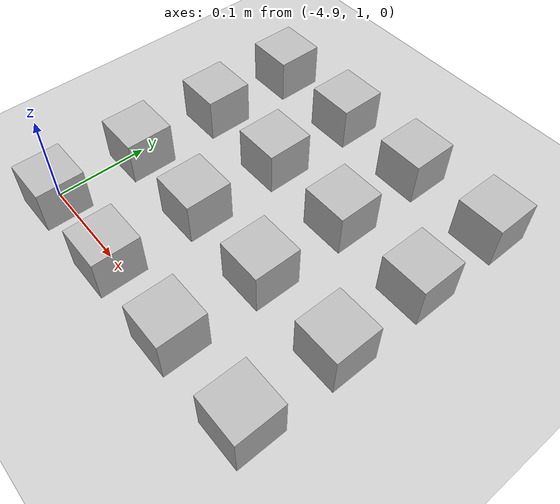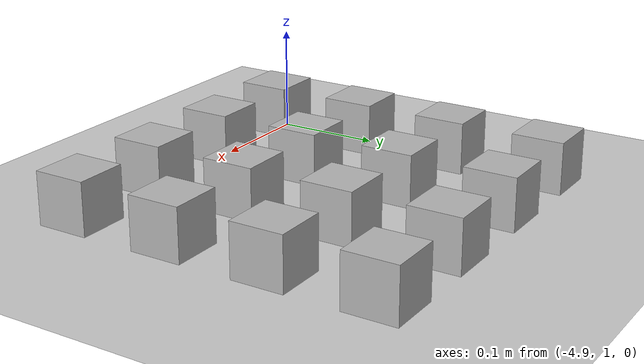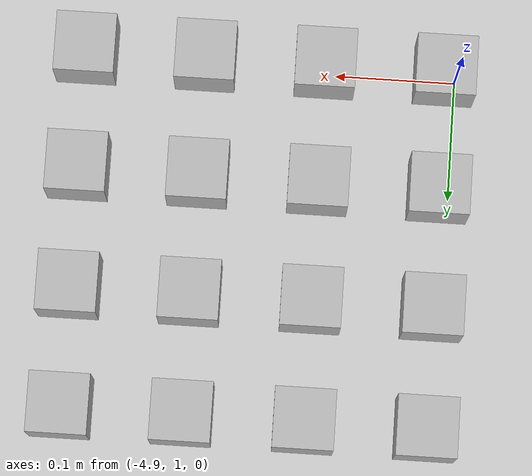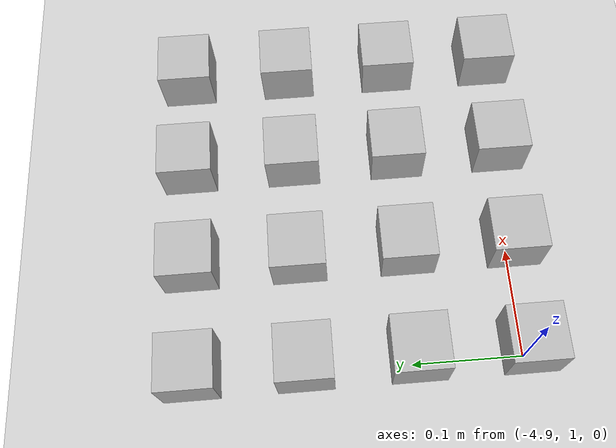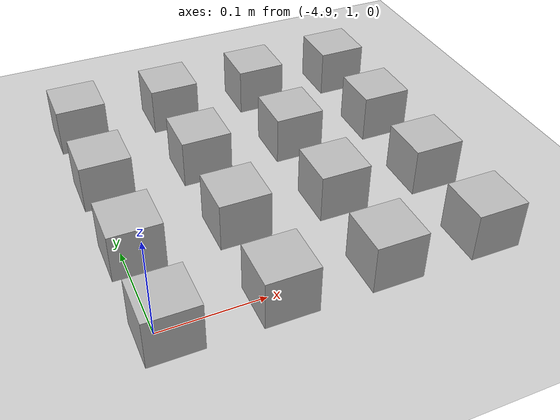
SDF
<sdf version="1.6">
 <world name="default">
  <model name="ground_plane">
   <static>1</static>
   <link name="link">
    <collision name="collision">
     <geometry><plane><normal>0 0 1</normal><size>100 100</size></plane></geometry>
     <surface><friction><ode><mu>100</mu><mu2>50</mu2></ode></friction></surface>
    </collision>
    <visual name="visual">
     <cast_shadows>0</cast_shadows>
     <geometry><plane><normal>0 0 1</normal><size>100 100</size></plane></geometry>
     <material>
      <script><uri>file://media/materials/scripts/gazebo.material</uri><name>Gazebo/Grey</name></script>
     </material>
    </visual>
   </link>
  </model>
  <model name="at0">
   <static>0</static>
   <link name="link">
    <inertial>
     <mass>0.01</mass>
     <inertia><ixx>4e-05</ixx><ixy>0</ixy><ixz>0</ixz><iyy>4e-05</iyy><iyz>0</iyz><izz>4e-05</izz></inertia>
    </inertial>
    <visual name="visual">
     <geometry><box><size>0.05 0.05 0.05</size></box></geometry>
     <material>
      <script>
       <uri>model://at0/materials/scripts</uri>
       <uri>model://at0/materials/textures</uri>
       <name>at0/Diffuse</name>
      </script>
     </material>
    </visual>
    <collision name="collision">
     <geometry><box><size>0.05 0.05 0.05</size></box></geometry>
     <surface><friction><ode><mu>0.8</mu><mu2>0.7</mu2></ode></friction></surface>
    </collision>
   </link>
   <pose>-4.89048 0.994146 0.025 0 -0 0</pose>
  </model>
  <model name="at1">
   <static>0</static>
   <link name="link">
    <inertial>
     <mass>0.01</mass>
     <inertia><ixx>4e-05</ixx><ixy>0</ixy><ixz>0</ixz><iyy>4e-05</iyy><iyz>0</iyz><izz>4e-05</izz></inertia>
    </inertial>
    <visual name="visual">
     <geometry><box><size>0.05 0.05 0.05</size></box></geometry>
     <material>
      <script>
       <uri>model://at0/materials/scripts</uri>
       <uri>model://at0/materials/textures</uri>
       <name>at0/Diffuse</name>
      </script>
     </material>
    </visual>
    <collision name="collision">
     <geometry><box><size>0.05 0.05 0.05</size></box></geometry>
     <surface><friction><ode><mu>0.8</mu><mu2>0.7</mu2></ode></friction></surface>
    </collision>
   </link>
   <pose>-4.79048 0.994146 0.025 0 -0 0</pose>
  </model>
  <model name="at2">
   <static>0</static>
   <link name="link">
    <inertial>
     <mass>0.01</mass>
     <inertia><ixx>4e-05</ixx><ixy>0</ixy><ixz>0</ixz><iyy>4e-05</iyy><iyz>0</iyz><izz>4e-05</izz></inertia>
    </inertial>
    <visual name="visual">
     <geometry><box><size>0.05 0.05 0.05</size></box></geometry>
     <material>
      <script>
       <uri>model://at0/materials/scripts</uri>
       <uri>model://at0/materials/textures</uri>
       <name>at0/Diffuse</name>
      </script>
     </material>
    </visual>
    <collision name="collision">
     <geometry><box><size>0.05 0.05 0.05</size></box></geometry>
     <surface><friction><ode><mu>0.8</mu><mu2>0.7</mu2></ode></friction></surface>
    </collision>
   </link>
   <pose>-4.69048 0.994146 0.025 0 -0 0</pose>
  </model>
  <model name="at3">
   <static>0</static>
   <link name="link">
    <inertial>
     <mass>0.01</mass>
     <inertia><ixx>4e-05</ixx><ixy>0</ixy><ixz>0</ixz><iyy>4e-05</iyy><iyz>0</iyz><izz>4e-05</izz></inertia>
    </inertial>
    <visual name="visual">
     <geometry><box><size>0.05 0.05 0.05</size></box></geometry>
     <material>
      <script>
       <uri>model://at0/materials/scripts</uri>
       <uri>model://at0/materials/textures</uri>
       <name>at0/Diffuse</name>
      </script>
     </material>
    </visual>
    <collision name="collision">
     <geometry><box><size>0.05 0.05 0.05</size></box></geometry>
     <surface><friction><ode><mu>0.8</mu><mu2>0.7</mu2></ode></friction></surface>
    </collision>
   </link>
   <pose>-4.59048 0.994146 0.025 0 -0 0</pose>
  </model>
  <model name="at4">
   <static>0</static>
   <link name="link">
    <inertial>
     <mass>0.01</mass>
     <inertia><ixx>4e-05</ixx><ixy>0</ixy><ixz>0</ixz><iyy>4e-05</iyy><iyz>0</iyz><izz>4e-05</izz></inertia>
    </inertial>
    <visual name="visual">
     <geometry><box><size>0.05 0.05 0.05</size></box></geometry>
     <material>
      <script>
       <uri>model://at0/materials/scripts</uri>
       <uri>model://at0/materials/textures</uri>
       <name>at0/Diffuse</name>
      </script>
     </material>
    </visual>
    <collision name="collision">
     <geometry><box><size>0.05 0.05 0.05</size></box></geometry>
     <surface><friction><ode><mu>0.8</mu><mu2>0.7</mu2></ode></friction></surface>
    </collision>
   </link>
   <pose>-4.89048 1.09415 0.025 0 -0 0</pose>
  </model>
  <model name="at5">
   <static>0</static>
   <link name="link">
    <inertial>
     <mass>0.01</mass>
     <inertia><ixx>4e-05</ixx><ixy>0</ixy><ixz>0</ixz><iyy>4e-05</iyy><iyz>0</iyz><izz>4e-05</izz></inertia>
    </inertial>
    <visual name="visual">
     <geometry><box><size>0.05 0.05 0.05</size></box></geometry>
     <material>
      <script>
       <uri>model://at0/materials/scripts</uri>
       <uri>model://at0/materials/textures</uri>
       <name>at0/Diffuse</name>
      </script>
     </material>
    </visual>
    <collision name="collision">
     <geometry><box><size>0.05 0.05 0.05</size></box></geometry>
     <surface><friction><ode><mu>0.8</mu><mu2>0.7</mu2></ode></friction></surface>
    </collision>
   </link>
   <pose>-4.79048 1.09415 0.025 0 -0 0</pose>
  </model>
  <model name="at6">
   <static>0</static>
   <link name="link">
    <inertial>
     <mass>0.01</mass>
     <inertia><ixx>4e-05</ixx><ixy>0</ixy><ixz>0</ixz><iyy>4e-05</iyy><iyz>0</iyz><izz>4e-05</izz></inertia>
    </inertial>
    <visual name="visual">
     <geometry><box><size>0.05 0.05 0.05</size></box></geometry>
     <material>
      <script>
       <uri>model://at0/materials/scripts</uri>
       <uri>model://at0/materials/textures</uri>
       <name>at0/Diffuse</name>
      </script>
     </material>
    </visual>
    <collision name="collision">
     <geometry><box><size>0.05 0.05 0.05</size></box></geometry>
     <surface><friction><ode><mu>0.8</mu><mu2>0.7</mu2></ode></friction></surface>
    </collision>
   </link>
   <pose>-4.69048 1.09415 0.025 0 -0 0</pose>
  </model>
  <model name="at7">
   <static>0</static>
   <link name="link">
    <inertial>
     <mass>0.01</mass>
     <inertia><ixx>4e-05</ixx><ixy>0</ixy><ixz>0</ixz><iyy>4e-05</iyy><iyz>0</iyz><izz>4e-05</izz></inertia>
    </inertial>
    <visual name="visual">
     <geometry><box><size>0.05 0.05 0.05</size></box></geometry>
     <material>
      <script>
       <uri>model://at0/materials/scripts</uri>
       <uri>model://at0/materials/textures</uri>
       <name>at0/Diffuse</name>
      </script>
     </material>
    </visual>
    <collision name="collision">
     <geometry><box><size>0.05 0.05 0.05</size></box></geometry>
     <surface><friction><ode><mu>0.8</mu><mu2>0.7</mu2></ode></friction></surface>
    </collision>
   </link>
   <pose>-4.59048 1.09415 0.025 0 -0 0</pose>
  </model>
  <model name="at8">
   <static>0</static>
   <link name="link">
    <inertial>
     <mass>0.01</mass>
     <inertia><ixx>4e-05</ixx><ixy>0</ixy><ixz>0</ixz><iyy>4e-05</iyy><iyz>0</iyz><izz>4e-05</izz></inertia>
    </inertial>
    <visual name="visual">
     <geometry><box><size>0.05 0.05 0.05</size></box></geometry>
     <material>
      <script>
       <uri>model://at0/materials/scripts</uri>
       <uri>model://at0/materials/textures</uri>
       <name>at0/Diffuse</name>
      </script>
     </material>
    </visual>
    <collision name="collision">
     <geometry><box><size>0.05 0.05 0.05</size></box></geometry>
     <surface><friction><ode><mu>0.8</mu><mu2>0.7</mu2></ode></friction></surface>
    </collision>
   </link>
   <pose>-4.89048 1.19415 0.025 0 -0 0</pose>
  </model>
  <model name="at9">
   <static>0</static>
   <link name="link">
    <inertial>
     <mass>0.01</mass>
     <inertia><ixx>4e-05</ixx><ixy>0</ixy><ixz>0</ixz><iyy>4e-05</iyy><iyz>0</iyz><izz>4e-05</izz></inertia>
    </inertial>
    <visual name="visual">
     <geometry><box><size>0.05 0.05 0.05</size></box></geometry>
     <material>
      <script>
       <uri>model://at0/materials/scripts</uri>
       <uri>model://at0/materials/textures</uri>
       <name>at0/Diffuse</name>
      </script>
     </material>
    </visual>
    <collision name="collision">
     <geometry><box><size>0.05 0.05 0.05</size></box></geometry>
     <surface><friction><ode><mu>0.8</mu><mu2>0.7</mu2></ode></friction></surface>
    </collision>
   </link>
   <pose>-4.79048 1.19415 0.025 0 -0 0</pose>
  </model>
  <model name="at10">
   <static>0</static>
   <link name="link">
    <inertial>
     <mass>0.01</mass>
     <inertia><ixx>4e-05</ixx><ixy>0</ixy><ixz>0</ixz><iyy>4e-05</iyy><iyz>0</iyz><izz>4e-05</izz></inertia>
    </inertial>
    <visual name="visual">
     <geometry><box><size>0.05 0.05 0.05</size></box></geometry>
     <material>
      <script>
       <uri>model://at0/materials/scripts</uri>
       <uri>model://at0/materials/textures</uri>
       <name>at0/Diffuse</name>
      </script>
     </material>
    </visual>
    <collision name="collision">
     <geometry><box><size>0.05 0.05 0.05</size></box></geometry>
     <surface><friction><ode><mu>0.8</mu><mu2>0.7</mu2></ode></friction></surface>
    </collision>
   </link>
   <pose>-4.69048 1.19415 0.025 0 -0 0</pose>
  </model>
  <model name="at11">
   <static>0</static>
   <link name="link">
    <inertial>
     <mass>0.01</mass>
     <inertia><ixx>4e-05</ixx><ixy>0</ixy><ixz>0</ixz><iyy>4e-05</iyy><iyz>0</iyz><izz>4e-05</izz></inertia>
    </inertial>
    <visual name="visual">
     <geometry><box><size>0.05 0.05 0.05</size></box></geometry>
     <material>
      <script>
       <uri>model://at0/materials/scripts</uri>
       <uri>model://at0/materials/textures</uri>
       <name>at0/Diffuse</name>
      </script>
     </material>
    </visual>
    <collision name="collision">
     <geometry><box><size>0.05 0.05 0.05</size></box></geometry>
     <surface><friction><ode><mu>0.8</mu><mu2>0.7</mu2></ode></friction></surface>
    </collision>
   </link>
   <pose>-4.59048 1.19415 0.025 0 -0 0</pose>
  </model>
  <model name="at12">
   <static>0</static>
   <link name="link">
    <inertial>
     <mass>0.01</mass>
     <inertia><ixx>4e-05</ixx><ixy>0</ixy><ixz>0</ixz><iyy>4e-05</iyy><iyz>0</iyz><izz>4e-05</izz></inertia>
    </inertial>
    <visual name="visual">
     <geometry><box><size>0.05 0.05 0.05</size></box></geometry>
     <material>
      <script>
       <uri>model://at0/materials/scripts</uri>
       <uri>model://at0/materials/textures</uri>
       <name>at0/Diffuse</name>
      </script>
     </material>
    </visual>
    <collision name="collision">
     <geometry><box><size>0.05 0.05 0.05</size></box></geometry>
     <surface><friction><ode><mu>0.8</mu><mu2>0.7</mu2></ode></friction></surface>
    </collision>
   </link>
   <pose>-4.89048 1.29415 0.025 0 -0 0</pose>
  </model>
  <model name="at13">
   <static>0</static>
   <link name="link">
    <inertial>
     <mass>0.01</mass>
     <inertia><ixx>4e-05</ixx><ixy>0</ixy><ixz>0</ixz><iyy>4e-05</iyy><iyz>0</iyz><izz>4e-05</izz></inertia>
    </inertial>
    <visual name="visual">
     <geometry><box><size>0.05 0.05 0.05</size></box></geometry>
     <material>
      <script>
       <uri>model://at0/materials/scripts</uri>
       <uri>model://at0/materials/textures</uri>
       <name>at0/Diffuse</name>
      </script>
     </material>
    </visual>
    <collision name="collision">
     <geometry><box><size>0.05 0.05 0.05</size></box></geometry>
     <surface><friction><ode><mu>0.8</mu><mu2>0.7</mu2></ode></friction></surface>
    </collision>
   </link>
   <pose>-4.79048 1.29415 0.025 0 -0 0</pose>
  </model>
  <model name="at14">
   <static>0</static>
   <link name="link">
    <inertial>
     <mass>0.01</mass>
     <inertia><ixx>4e-05</ixx><ixy>0</ixy><ixz>0</ixz><iyy>4e-05</iyy><iyz>0</iyz><izz>4e-05</izz></inertia>
    </inertial>
    <visual name="visual">
     <geometry><box><size>0.05 0.05 0.05</size></box></geometry>
     <material>
      <script>
       <uri>model://at0/materials/scripts</uri>
       <uri>model://at0/materials/textures</uri>
       <name>at0/Diffuse</name>
      </script>
     </material>
    </visual>
    <collision name="collision">
     <geometry><box><size>0.05 0.05 0.05</size></box></geometry>
     <surface><friction><ode><mu>0.8</mu><mu2>0.7</mu2></ode></friction></surface>
    </collision>
   </link>
   <pose>-4.69048 1.29415 0.025 0 -0 0</pose>
  </model>
  <model name="at15">
   <static>0</static>
   <link name="link">
    <inertial>
     <mass>0.01</mass>
     <inertia><ixx>4e-05</ixx><ixy>0</ixy><ixz>0</ixz><iyy>4e-05</iyy><iyz>0</iyz><izz>4e-05</izz></inertia>
    </inertial>
    <visual name="visual">
     <geometry><box><size>0.05 0.05 0.05</size></box></geometry>
     <material>
      <script>
       <uri>model://at0/materials/scripts</uri>
       <uri>model://at0/materials/textures</uri>
       <name>at0/Diffuse</name>
      </script>
     </material>
    </visual>
    <collision name="collision">
     <geometry><box><size>0.05 0.05 0.05</size></box></geometry>
     <surface><friction><ode><mu>0.8</mu><mu2>0.7</mu2></ode></friction></surface>
    </collision>
   </link>
   <pose>-4.59048 1.29415 0.025 0 -0 0</pose>
  </model>
 </world>
</sdf>
